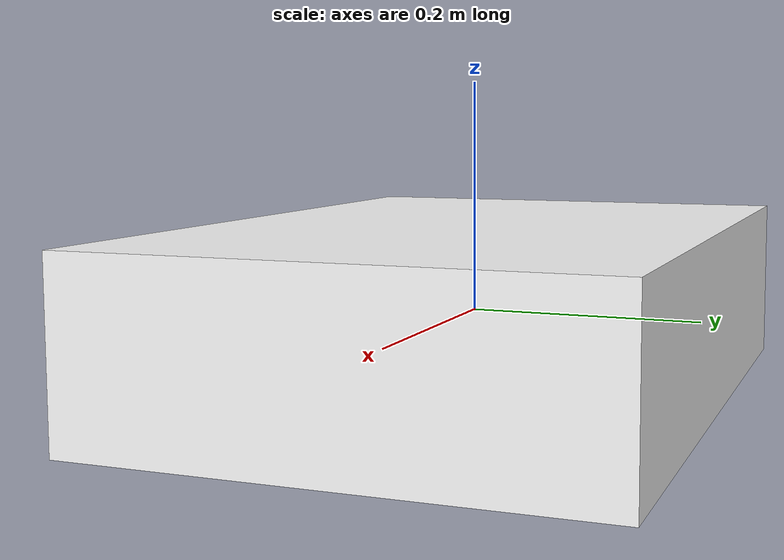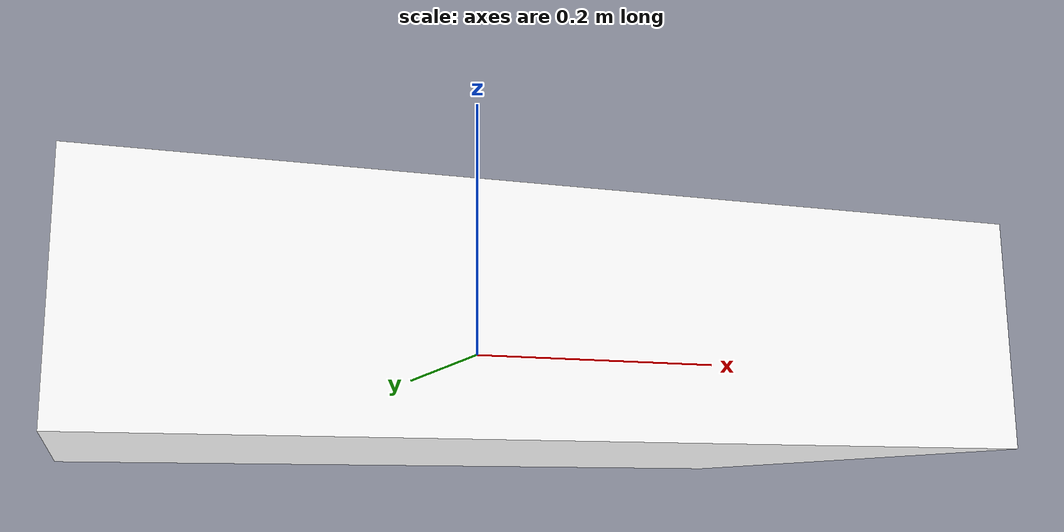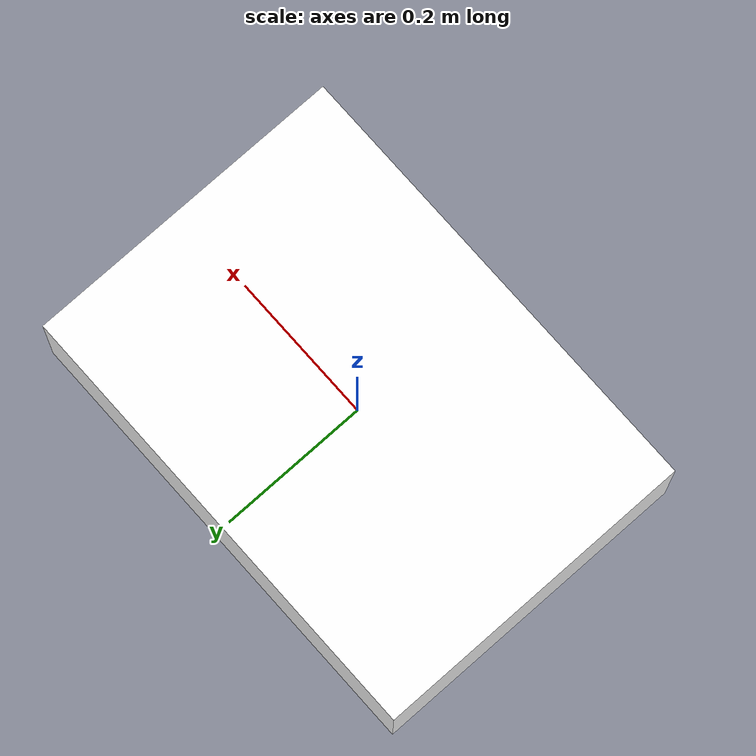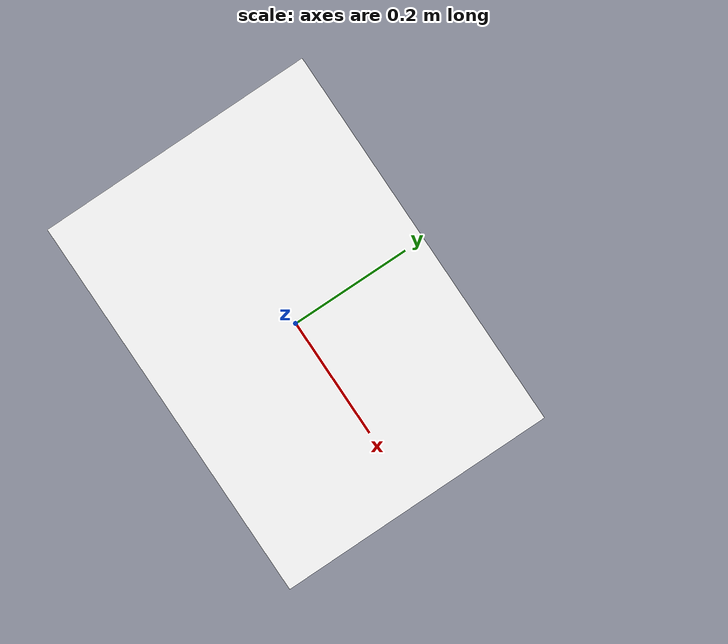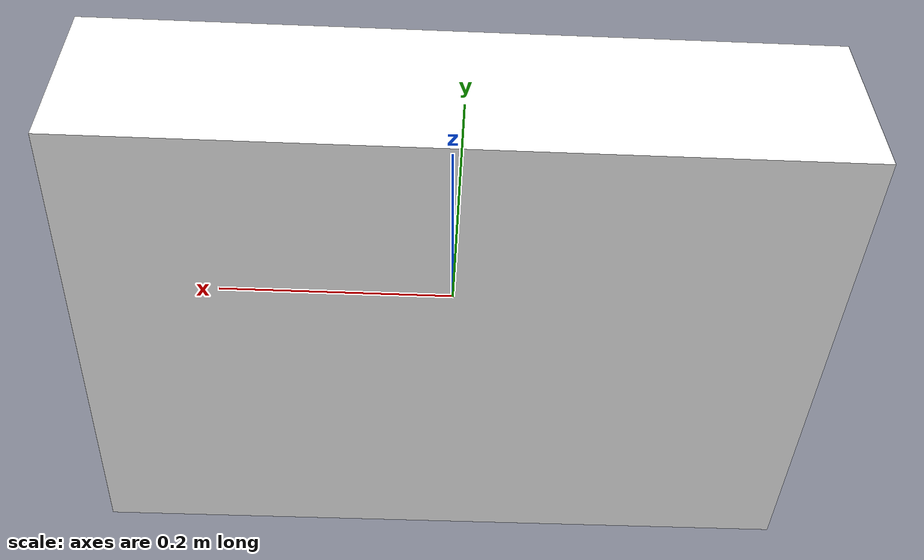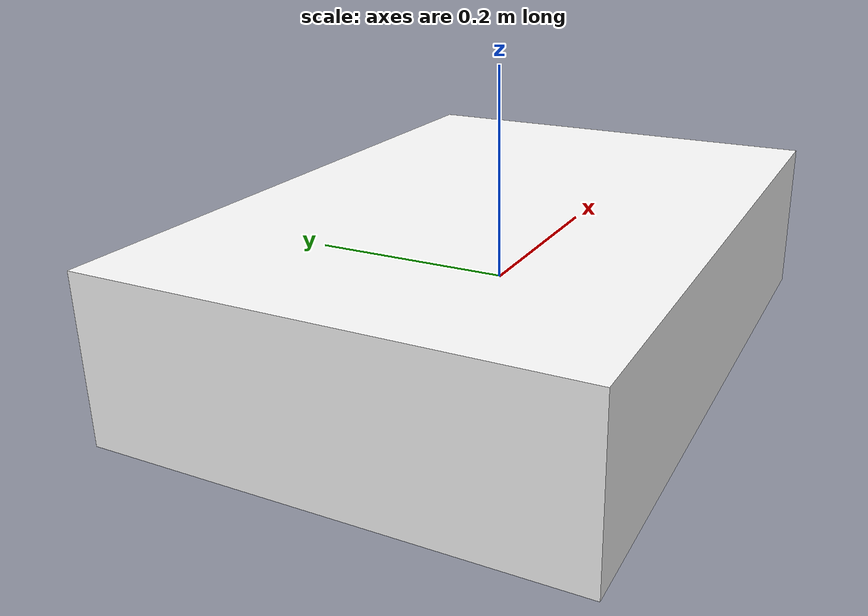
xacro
<?xml version="1.0"?>
<robot xmlns:xacro="http://www.ros.org/wiki/xacro">

  <xacro:property name="chassis_length" value="0.6096"/>
  <xacro:property name="chassis_width" value="0.4318"/>
  <xacro:property name="chassis_height" value="0.1524"/>

  <xacro:macro name="base" params="name">
    <link name="${name}" />
  </xacro:macro>

  <!-- Chassis Link -->
  <xacro:macro name="chassis" params="name parent">
    <link name="${name}">
      <inertial>
        <mass value="50"/>
        <origin xyz="0 0 -0.3"/>
        <inertia ixx="0.8736541668" ixy="0" ixz="0" iyy="1.645158" iyz="0" izz="2.325264166" />
      </inertial>
      <visual>
        <origin xyz="0 0 0" />
        <geometry>
          <box size="${chassis_length} ${chassis_width} ${chassis_height}"/>
        </geometry>
        <material name="white">
          <color rgba="1.0 1.0 1.0 1"/>
        </material>
      </visual>
      <collision>
        <origin xyz="0 0 0"/>
        <geometry>
          <box size="${chassis_length} ${chassis_width} ${chassis_height}"/>
        </geometry>
      </collision>
    </link>

    <joint name="body_joint" type="fixed">
      <parent link="${parent}" />
      <child link="${name}" />
      <origin xyz="0 0 0" />
    </joint>
  </xacro:macro>

  <!-- Instantiate Chassis -->
  <xacro:base name="base_link" />
  <xacro:chassis name="chassis_link" parent="base_link" />

</robot>
